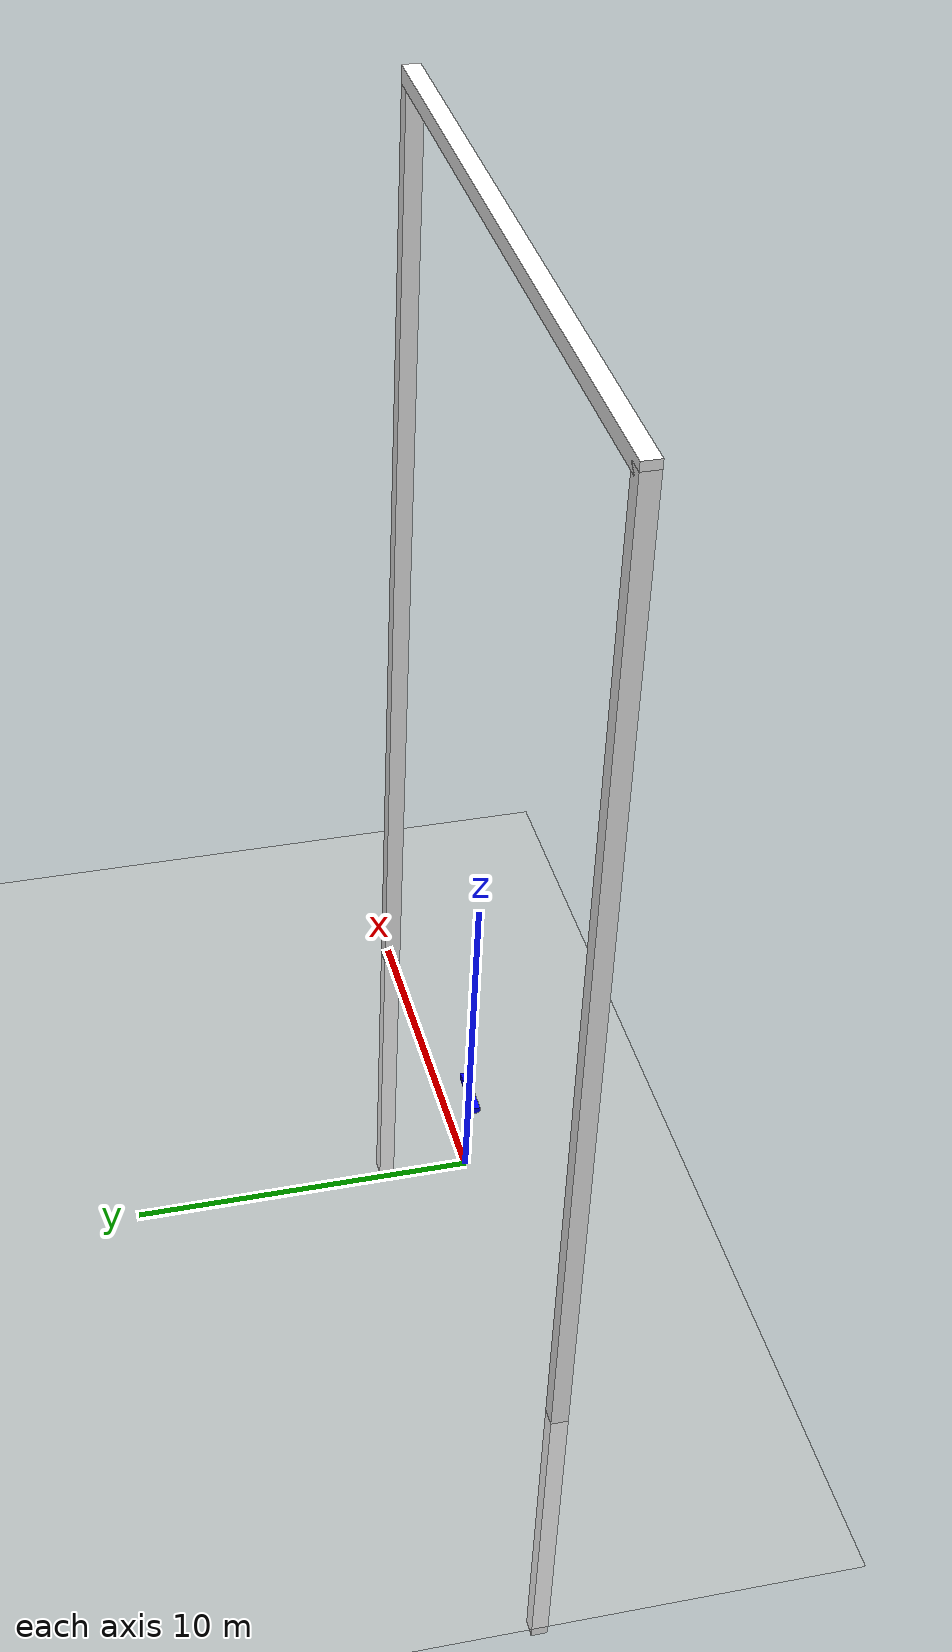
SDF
<?xml version="1.0" ?>
<sdf version="1.5">
  <world name="default">

		<!-- Camera pose -->
    <gui>
			<camera name="gzclient_camera">
				<pose>0.78 -6.20 3.74 0 0 1.57</pose>
			</camera>
    </gui>

    <!-- A global light source -->
    <include>
      <uri>model://sun</uri>
	    <pose>0 0 0 0 0 0</pose>
    </include>

    <!-- A ground plane -->
    <include>
      <uri>model://ground_plane</uri>
      <pose>0 0 0 0 0 0</pose>
    </include>

    <physics type="ode">
        <friction>
            <ode>
                <mu>0.0</mu>
            </ode>
        </friction>

        <gravity>0 0 0</gravity>
        <air_resistance>0</air_resistance>

        <max_step_size>0.001</max_step_size>
    </physics>

		<!-- A bouncy ball -->
		<include>
			<uri>model://bouncy_ball</uri>
			<pose>0 0 10 0 0 0</pose>
		</include>

		<!-- A boundary -->
		<include>
			<uri>model://boundary</uri>
			<pose>0 0 30 0 0 0</pose>
		</include>

		<!-- A paddle -->
		<include>
			<uri>model://paddle</uri>
			<pose>0 0 3 0 0 0</pose>
		</include>

		<!-- keep barebones scene -->
    <scene>
      <shadows>0</shadows>
			<grid>false</grid>
			<origin_visual>false</origin_visual>
    </scene>

  </world>
</sdf>

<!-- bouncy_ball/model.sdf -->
<sdf version="1.5">
    <model name="bouncy_ball">
      <link name="ball_link">

        <collision name="collision">
          <geometry>
            <sphere>
              <radius>0.1</radius>
            </sphere>
          </geometry>

          <surface>

            <bounce>
              <restitution_coefficient>2.0</restitution_coefficient>
              <threshold>0</threshold>
            </bounce>

						<friction>
							<ode>
								<mu>0.0</mu>
								<mu2>0.0</mu2>
							</ode>
						</friction>

            <contact>
              <ode>
                <max_vel>999</max_vel>
              </ode>
            </contact>

          </surface>

        </collision>

        <visual name="visual">
          <geometry>
            <sphere>
              <radius>0.1</radius>
            </sphere>
          </geometry>
					<material>
						<ambient>1.0 0.4 1.0 1</ambient>
						<diffuse>1.0 0.4 1.0 1</diffuse>
						<specular>0.1 0.1 0.1 1</specular>
					</material>
        </visual>

      </link>

		<plugin name="breakoutGazeboPlugin" filename="libbreakoutGazeboPlugin.so"/>

    </model>
</sdf>

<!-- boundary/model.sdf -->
<sdf version="1.5">
    <model name="boundary">
			<static>true</static>
      <link name="bottom_link">

        <collision name="collision">
          <geometry>
            <box>
							<size>20.0 0.5 0.5</size>
						</box>
          </geometry>

          <surface>

            <bounce>
              <restitution_coefficient>2.0</restitution_coefficient>
              <threshold>0</threshold>
            </bounce>

						<friction>
							<ode>
								<mu>0.0</mu>
								<mu2>0.0</mu2>
							</ode>
						</friction>

            <contact>
              <ode>
                <max_vel>999</max_vel>
              </ode>
            </contact>

          </surface>

        </collision>

        <visual name="visual">
          <geometry>
            <box>
							<size>20.0 0.5 0.5</size>
						</box>
          </geometry>

					<material>
						<ambient>1.0 1.0 1.0 1</ambient>
						<diffuse>1.0 1.0 1.0 1</diffuse>
						<specular>1.0 1.0 1.0 1</specular>
					</material>
        </visual>

      </link>

			<link name="left_link">
				<pose>-9.75 0 -20 0 1.5707 0</pose>

				<collision name="collision">
					<geometry>
						<box>
							<size>40.0 0.5 0.5</size>
						</box>
					</geometry>

					<surface>

						<bounce>
							<restitution_coefficient>1.0</restitution_coefficient>
							<threshold>0</threshold>
						</bounce>

						<friction>
							<ode>
								<mu>0.0</mu>
								<mu2>0.0</mu2>
							</ode>
						</friction>

						<contact>
							<ode>
								<max_vel>999</max_vel>
							</ode>
						</contact>

					</surface>

				</collision>

				<visual name="visual">
					<geometry>
						<box>
							<size>40.0 0.5 0.5</size>
						</box>
					</geometry>

					<material>
						<ambient>1.0 1.0 1.0 1</ambient>
						<diffuse>1.0 1.0 1.0 1</diffuse>
						<specular>1.0 1.0 1.0 1</specular>
					</material>

				</visual>
			</link>

			<link name="right_link">
				<pose>9.75 0 -20 0 1.5707 0</pose>

				<collision name="collision">
					<geometry>
						<box>
							<size>40.0 0.5 0.5</size>
						</box>
					</geometry>

					<surface>

						<bounce>
							<restitution_coefficient>1.0</restitution_coefficient>
							<threshold>0</threshold>
						</bounce>

						<friction>
							<ode>
								<mu>0.0</mu>
								<mu2>0.0</mu2>
							</ode>
						</friction>

						<contact>
							<ode>
								<max_vel>999</max_vel>
							</ode>
						</contact>

					</surface>

				</collision>

				<visual name="visual">
					<geometry>
						<box>
							<size>40.0 0.5 0.5</size>
						</box>
					</geometry>

					<material>
						<ambient>1.0 1.0 1.0 1</ambient>
						<diffuse>1.0 1.0 1.0 1</diffuse>
						<specular>1.0 1.0 1.0 1</specular>
					</material>

				</visual>
			</link>

    </model>
</sdf>

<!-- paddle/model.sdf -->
<sdf version="1.5">
    <model name="paddle">
			<static>false</static>
      <link name="base_link">

      <inertial>
        <pose>0 0 0 0 0 0</pose>
        <mass>1000000</mass>
				<inertia>
					<ixx>1000000</ixx>
					<ixy>0</ixy>
					<ixz>0</ixz>
					<iyy>1000000</iyy>
					<iyz>0</iyz>
					<izz>1000000</izz>
				</inertia>
			</inertial>

        <collision name="collision">
          <geometry>
            <box>
							<size>1.5 0.2 0.2</size>
						</box>
          </geometry>

          <surface>

            <bounce>
              <restitution_coefficient>2.0</restitution_coefficient>
              <threshold>0</threshold>
            </bounce>

						<friction>
							<ode>
								<mu>0.0</mu>
								<mu2>0.0</mu2>
							</ode>
						</friction>

            <contact>
              <ode>
                <max_vel>999</max_vel>
              </ode>
            </contact>

          </surface>

        </collision>

        <visual name="visual">
          <geometry>
            <box>
							<size>1.5 0.2 0.2</size>
						</box>
          </geometry>
					<material>
						<ambient>0.0 0.0 1.0 1</ambient>
						<diffuse>0.0 0.0 1.0 1</diffuse>
						<specular>0.1 0.1 0.1 1</specular>
					</material>
        </visual>

      </link>

			<plugin name="object_controller" filename="libgazebo_ros_planar_move.so">
				<commandTopic>paddle/cmd_vel</commandTopic>
				<odometryTopic>paddle/odom</odometryTopic>
				<odometryFrame>paddle/odom</odometryFrame>
				<odometryRate>50.0</odometryRate>
				<robotBaseFrame>base_link</robotBaseFrame>
				<cmdTimeout>-1.0</cmdTimeout>
			</plugin>

    </model>
</sdf>
